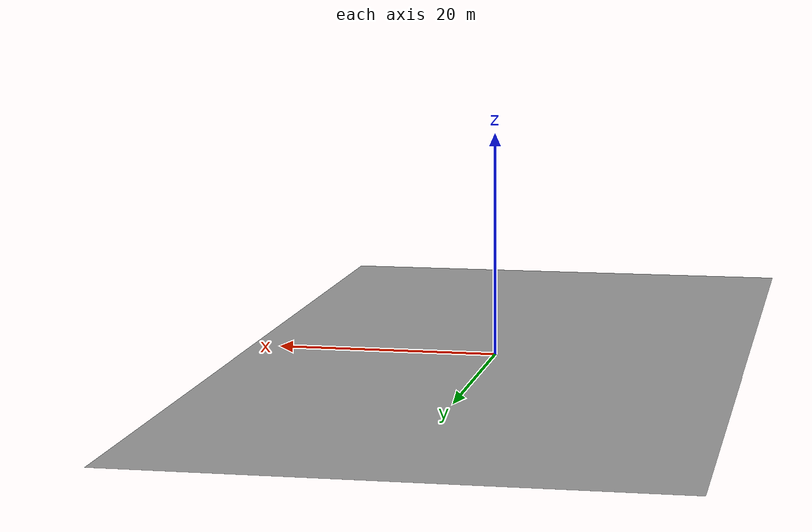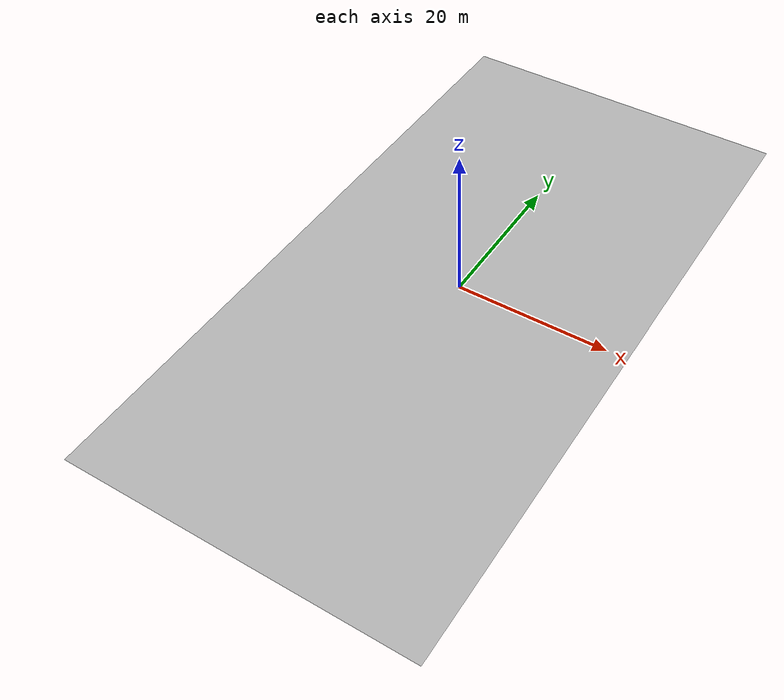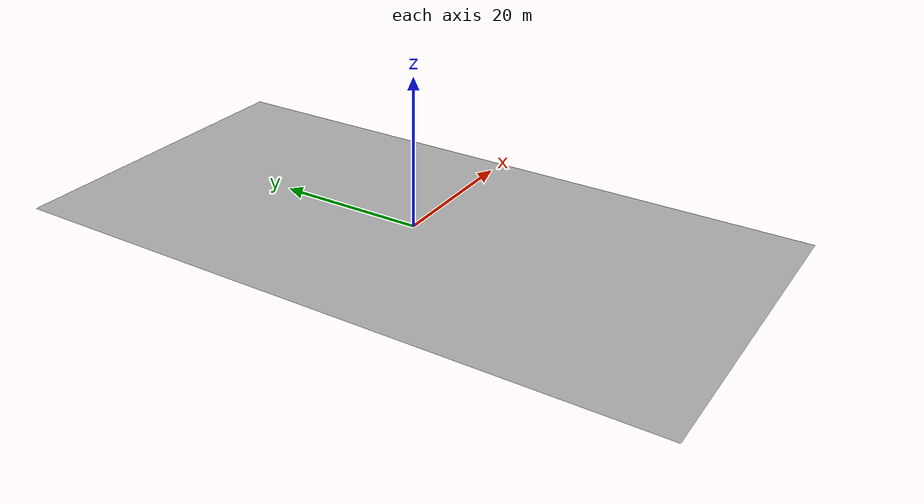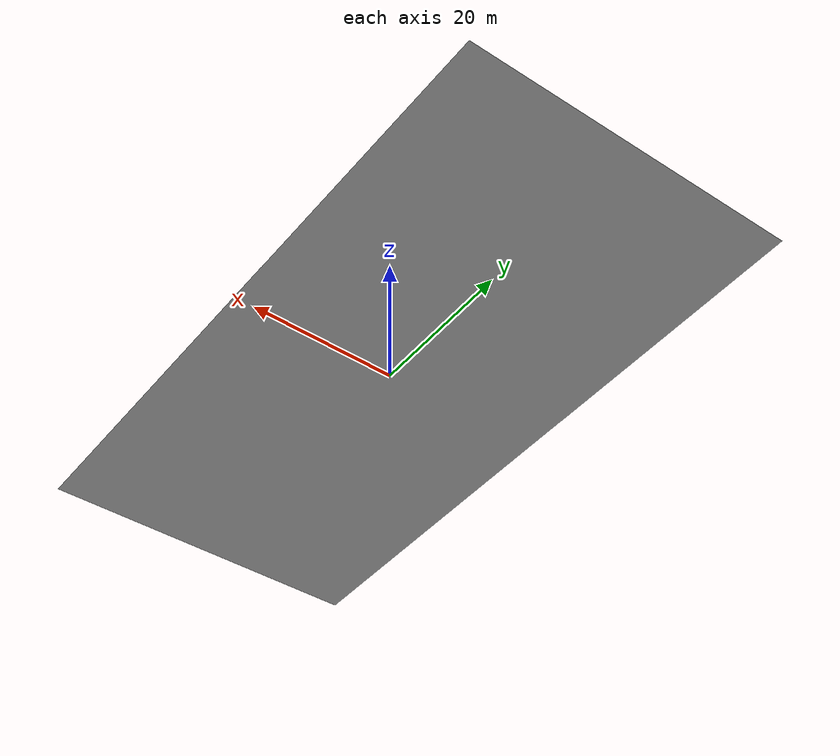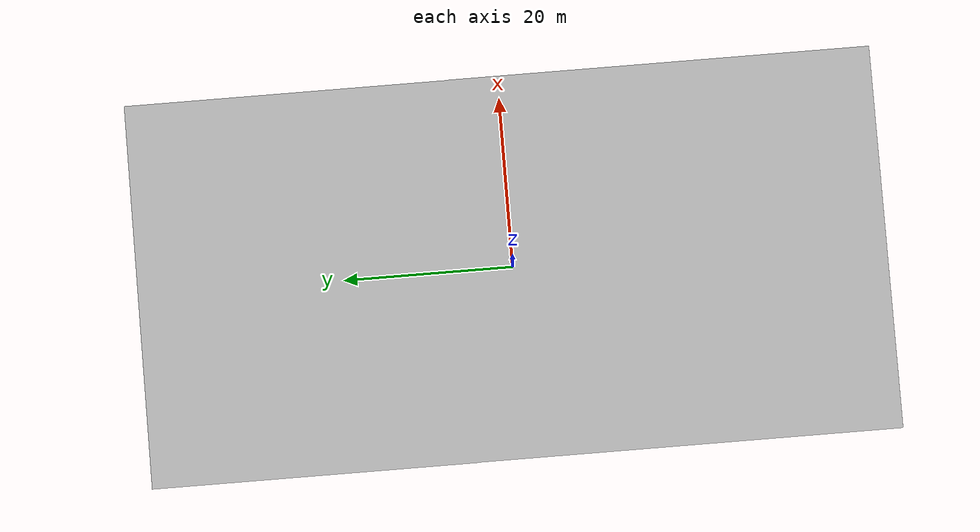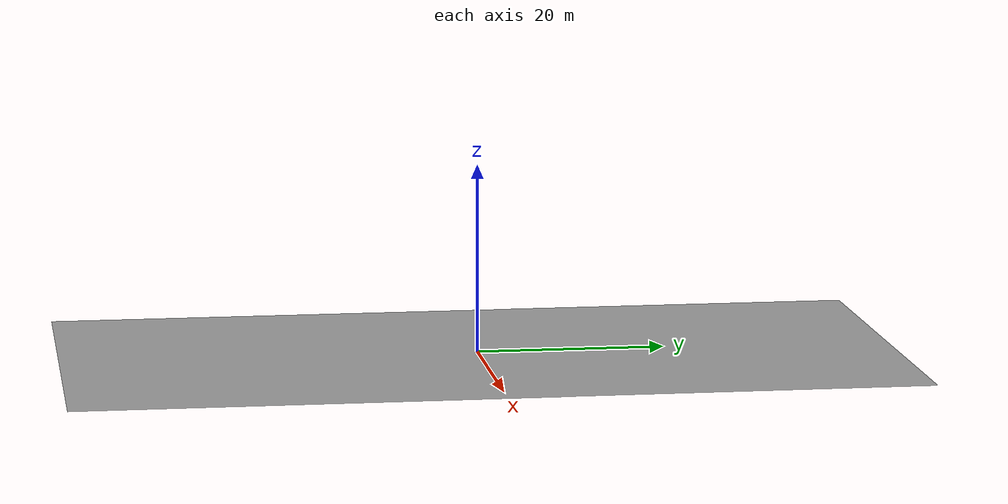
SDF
<?xml version="1.0"?>
<sdf version='1.5'>
  <model name='paddy_farm'>
    <static>True</static>
    <link name='base'>
    	<collision name="collision">
        <geometry>
          <plane>
            <normal>0 0 1</normal>
            <size>100 100</size>
          </plane>
        </geometry>
        <surface>
          <contact>
             <collide_bitmask>0xffff</collide_bitmask>
          </contact>
          <friction>
            <ode>
              <mu>100</mu>
              <mu2>50</mu2>
            </ode>
          </friction>
        </surface>
      </collision>
        <visual name="visual">
          <geometry>
            <mesh><uri>model://paddy_farm/meshes/farm.obj</uri>
            </mesh>
          </geometry>
        </visual>
   </link>
 </model>
</sdf>
